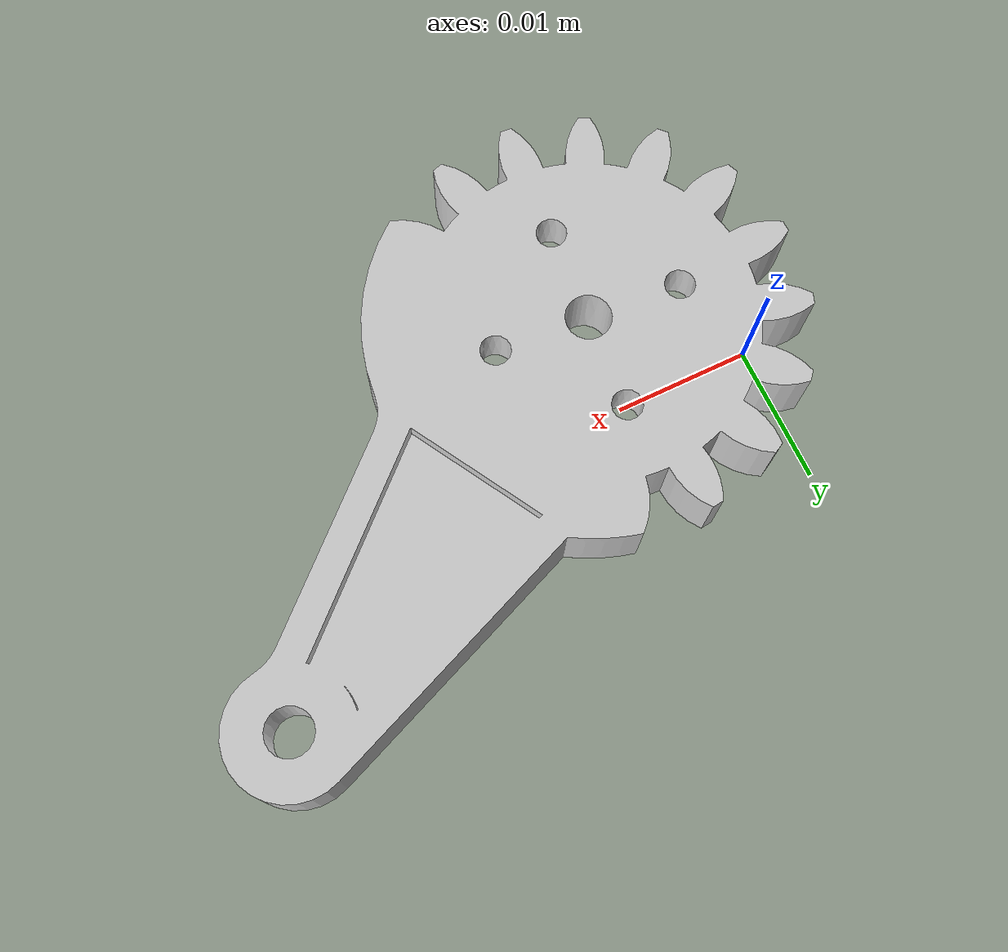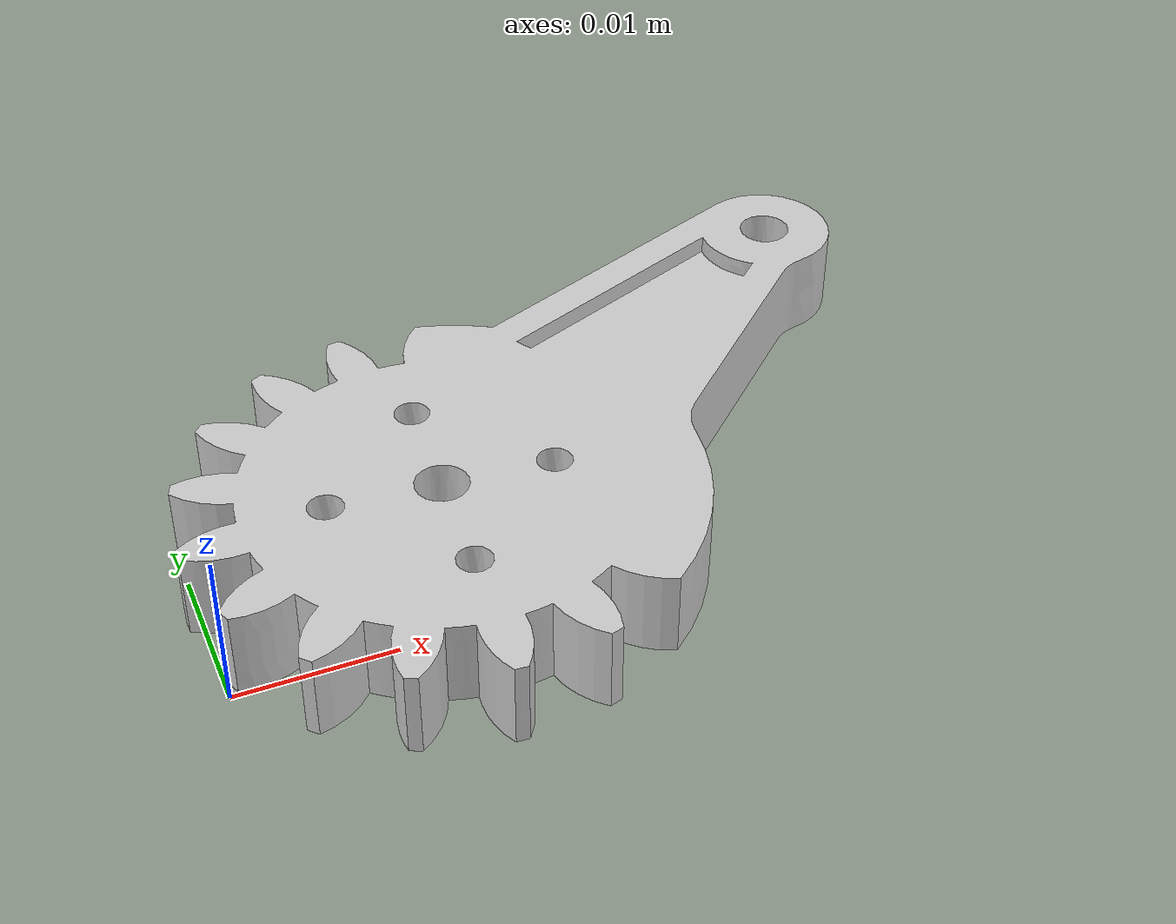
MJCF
<mujoco model="gripper_right3">
  <default>
    <default class="visual">
      <geom group="2" type="mesh" contype="0" conaffinity="0"/>
    </default>
    <default class="collision">
      <geom group="3" type="mesh"/>
    </default>
  </default>
  <asset>
    <material name="material_0" specular="0.0" shininess="0.0" rgba="0.800000 0.800000 0.800000 1.000000"/>
    <mesh file="gripper_right3.obj"/>
  </asset>
  <worldbody>
    <body name="gripper_right3">
      <geom material="material_0" mesh="gripper_right3" class="visual"/>
      <geom mesh="gripper_right3" class="collision"/>
    </body>
  </worldbody>
</mujoco>
